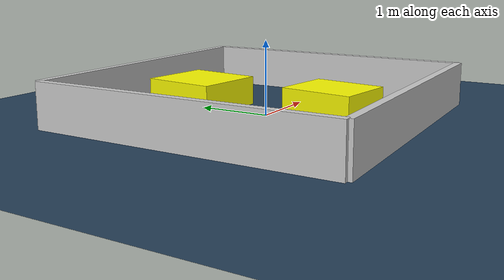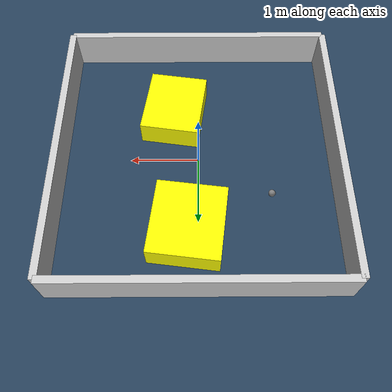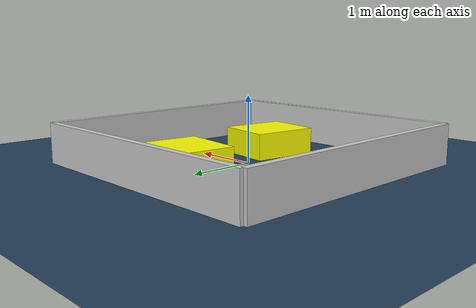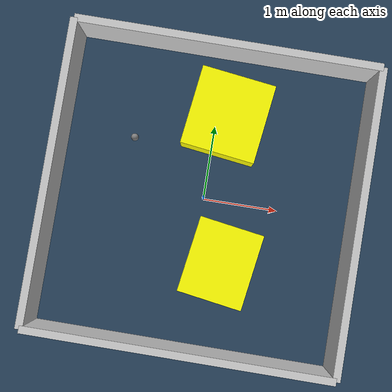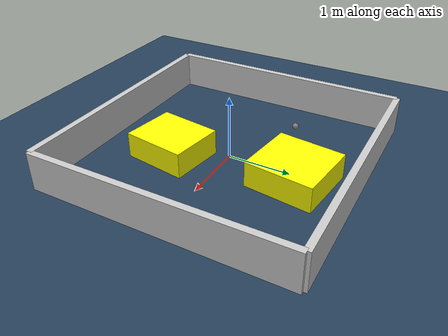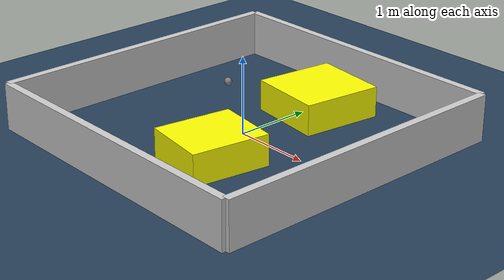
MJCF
<?xml version="1.0" ?>
<mujoco model="generated_environment">
  <option timestep="0.01" integrator="RK4" cone="elliptic"/>
  <default>
    <geom density="1"/>
  </default>
  <asset>
    <texture builtin="gradient" height="3072" rgb1="0.3 0.5 0.7" rgb2="0 0 0" type="skybox" width="512"/>
    <texture builtin="checker" height="300" mark="edge" markrgb="0.8 0.8 0.8" name="groundplane" rgb1="0.2 0.3 0.4" rgb2="0.1 0.2 0.3" type="2d" width="300"/>
    <material name="groundplane" reflectance="0.2" texrepeat="5 5" texture="groundplane" texuniform="true"/>
    <material name="robot" rgba="0.0 1.0 0.0 1"/>
  </asset>
  <worldbody>
    <light dir="0 0 -1" directional="true" pos="0 0 1.5"/>
    <geom condim="4" friction="1.0 0.005 0.001" material="groundplane" name="floor" size="0 0 0.05" type="plane"/>
    <body name="walls">
      <geom name="wall_1" condim="4" pos="-2.0 0.0 0.3" rgba="0.800000011920929 0.800000011920929 0.800000011920929 1.0" size="0.05 2.0 0.3" type="box"/>
      <geom name="wall_2" condim="4" pos="2.0 0.0 0.3" rgba="0.800000011920929 0.800000011920929 0.800000011920929 1.0" size="0.05 2.0 0.3" type="box"/>
      <geom name="wall_3" condim="4" pos="0.0 -2.0 0.3" rgba="0.800000011920929 0.800000011920929 0.800000011920929 1.0" size="2.0 0.05 0.3" type="box"/>
      <geom name="wall_4" condim="4" pos="0.0 2.0 0.3" rgba="0.800000011920929 0.800000011920929 0.800000011920929 1.0" size="2.0 0.05 0.3" type="box"/>
    </body>
    <body name="robot">
      <joint name="joint_x" type="slide" pos="0 0 0" axis="1 0 0"/>
      <joint name="joint_y" type="slide" pos="0 0 0" axis="0 1 0"/>
      <geom name="robot" type="sphere" pos="-1.0315575035453874 0.6595252002707666 0.2" size="0.05" mass="5." friction="1.0 0.005 0.0001" condim="4"/>
      <site name="sensor_ball"/>
    </body>
    <body name="obstacle_1_movable">
      <geom name="obstacle_1_movable" condim="4" pos="0.3589714433566844 -0.7967022967002685 0.2" euler="0 0 351.5570993686315" friction="1.0 0.005 0.001" rgba="1 1 0 1" size="0.4298328256874936 0.503395088053509 0.2" type="box" mass="0.1"/>
      <joint type="free"/>
    </body>
    <body name="obstacle_2_movable">
      <geom name="obstacle_2_movable" condim="4" pos="0.14537521701357847 1.1275120258228544 0.2" euler="0 0 172.8066409547433" friction="1.0 0.005 0.001" rgba="1 1 0 1" size="0.4974004060985842 0.5279417862009388 0.2" type="box" mass="0.1"/>
      <joint type="free"/>
    </body>
  </worldbody>
  <actuator>
    <motor name="actuator_x" joint="joint_x" gear="1" ctrlrange="-1 1"/>
    <motor name="actuator_y" joint="joint_y" gear="1" ctrlrange="-1 1"/>
  </actuator>
</mujoco>
